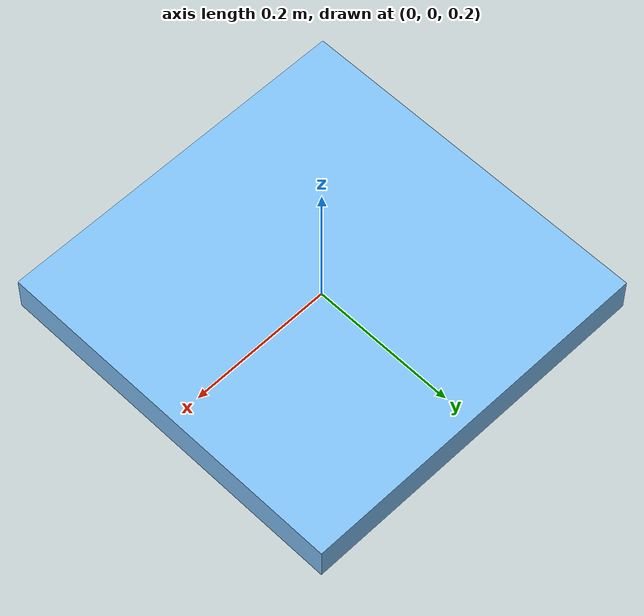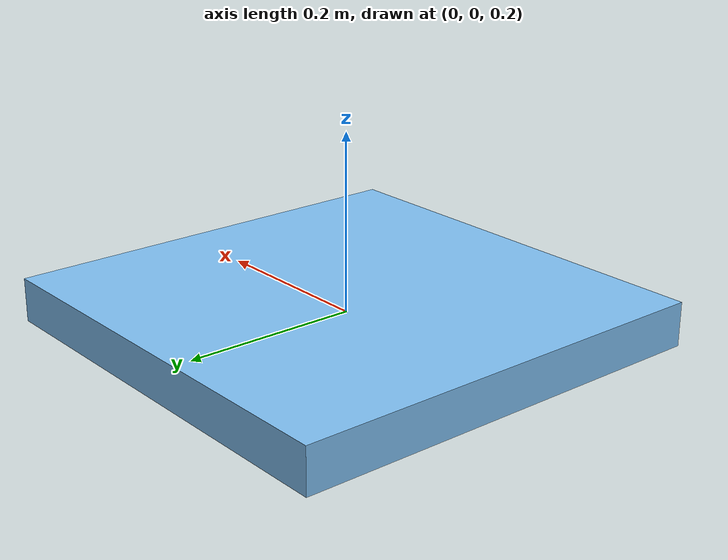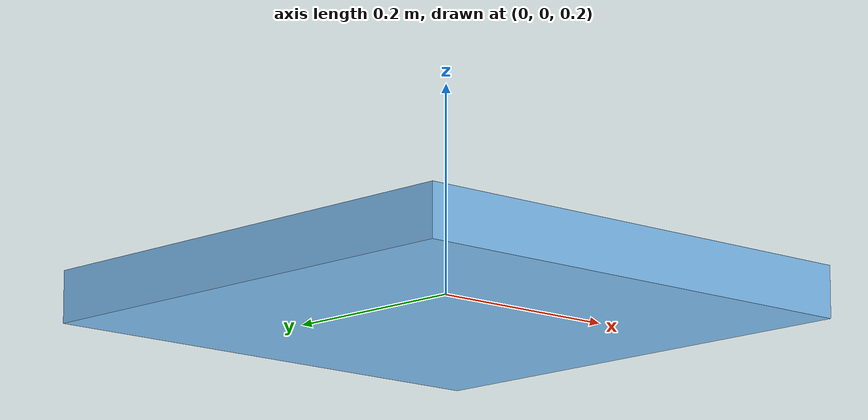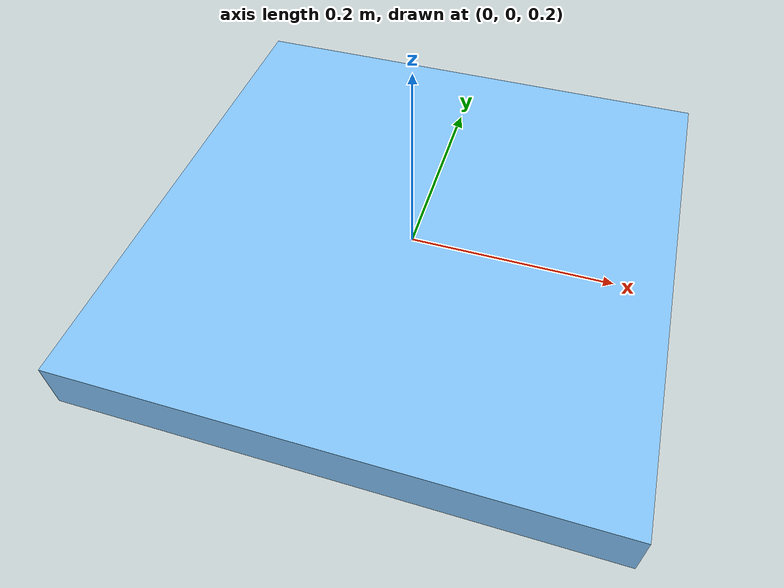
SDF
<?xml version="1.0"?>
<sdf version="1.7">
  <model name="storage_unit">
    <static>true</static>
    <pose>0 0 0.2 0 0 0</pose>
    <link name="link">
      <inertial>
        <mass>1</mass>
        <inertia>
          <!-- Moments of inertia of a box -->
          <!-- ixx = 1/12 * m * (y^2 + z^2) -->
          <!-- ixy = 0 -->
          <!-- ixz = 0 -->
          <!-- iyy = 1/12 * m * (x^2 + z^2) -->
          <!-- iyz = 0 -->
          <!-- izz = 1/12 * m * (x^2 + y^2) -->
          <ixx>0.021</ixx>
          <ixy>0</ixy>
          <ixz>0</ixz>
          <iyy>0.021</iyy>
          <iyz>0</iyz>
          <izz>0.021</izz>
        </inertia>
        <pose>0 0 0 0 -0 0</pose>
      </inertial>
      <collision name="collision">
        <geometry>
          <box>
            <size>0.5 0.5 0.05</size>
          </box>
        </geometry>
      </collision>
      <visual name="visual">
        <geometry>
          <box>
            <size>0.5 0.5 0.05</size>
          </box>
        </geometry>
        <material>
          <script>
            <name>Gazebo/SkyBlue</name>
            <uri>file://media/materials/scripts/gazebo.material</uri>
          </script>
        </material>
      </visual>
    </link>
    <!-- Attachment link & joint -->
    <link name="attacher_link">
      <pose relative_to="link">
        0 0 0.15 0 0 0
      </pose>
    </link>
    <joint name="attacher_joint" type="fixed">
      <parent>link</parent>
      <child>attacher_link</child>
      <pose relative_to="attacher_link">
        0 0 0 0 0 0
      </pose>
    </joint>
  </model>
</sdf>
